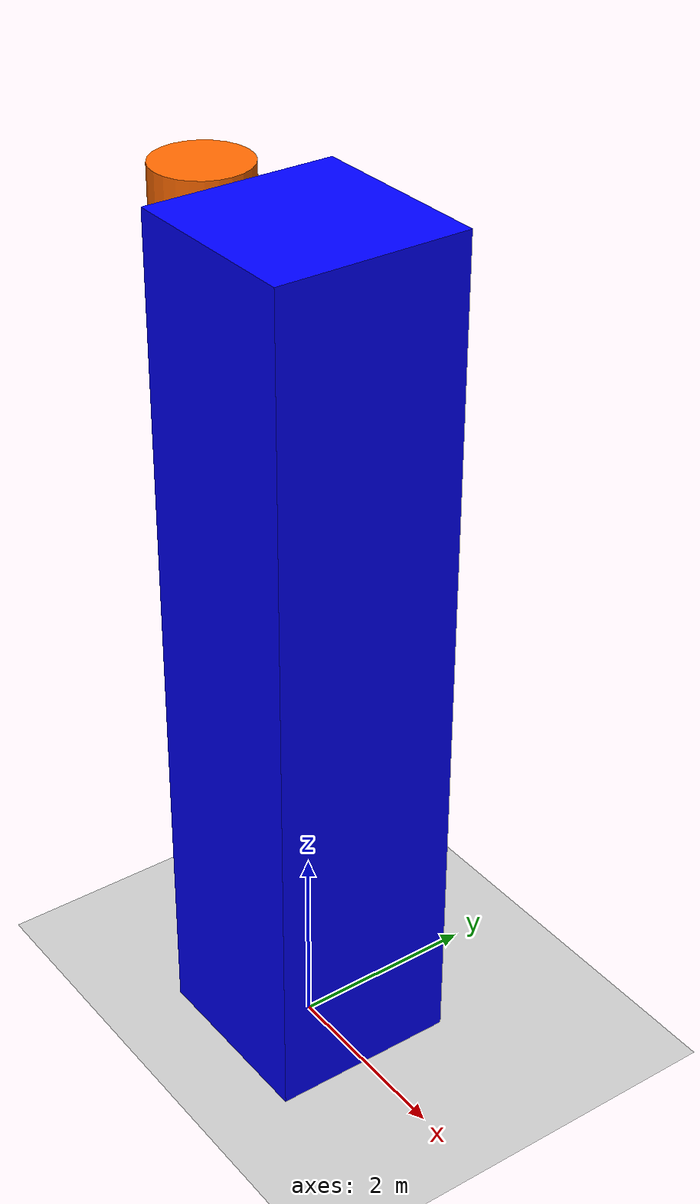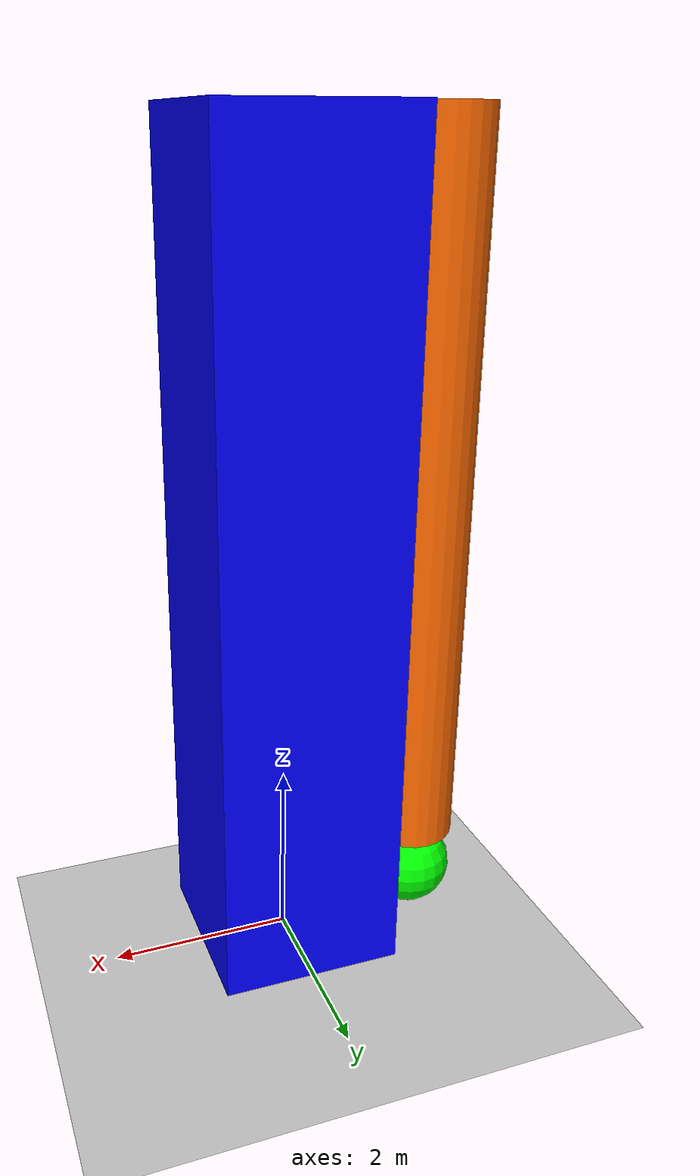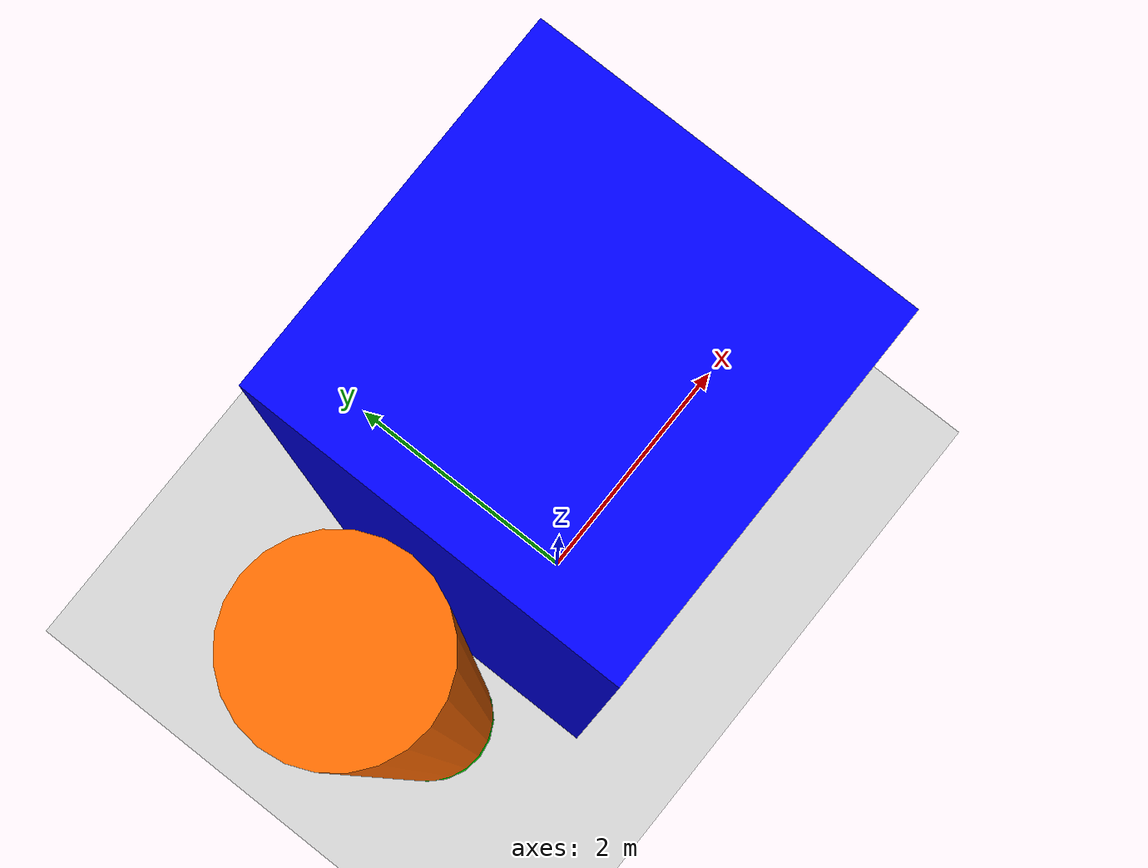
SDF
<?xml version="1.0" ?>
<sdf version="1.8">
    <world name="sim_world">
        <physics name="1ms" type="ignored">
            <max_step_size>0.001</max_step_size>
            <real_time_factor>1.0</real_time_factor>
        </physics>
        <plugin filename="gz-sim-physics-system" name="gz::sim::systems::Physics">
        </plugin>
        <plugin filename="gz-sim-user-commands-system" name="gz::sim::systems::UserCommands">
        </plugin>
        <plugin filename="gz-sim-scene-broadcaster-system" name="gz::sim::systems::SceneBroadcaster">
        </plugin>
        <plugin filename="gz-sim-forcetorque-system" name="gz::sim::systems::ForceTorque">
        </plugin>

        <light type="directional" name="sun">
            <cast_shadows>true</cast_shadows>
            <pose>0 0 10 0 0 0</pose>
            <diffuse>0.8 0.8 0.8 1</diffuse>
            <specular>0.2 0.2 0.2 1</specular>
            <attenuation>
                <range>1000</range>
                <constant>0.9</constant>
                <linear>0.01</linear>
                <quadratic>0.001</quadratic>
            </attenuation>
            <direction>-0.5 0.1 -0.9</direction>
        </light>

        <gui fullscreen="0">
            <!-- Joint Position Ctrl -->
            <plugin filename="JointPositionController" name="Joint Position Controller">
                <gz-gui>
                    <property type="bool" key="showTitleBar">true</property>
                    <property type="bool" key="resizable">true</property>
                    <property type="double" key="width">450</property>
                    <property type="double" key="height">150</property>
                    <property type="string" key="state">floating</property>
                    <anchors target="3D View">
                        <line own="left" target="left"/>
                        <line own="top" target="top"/>
                    </anchors>
                </gz-gui>
            </plugin>

            <!-- 3D scene -->
            <plugin filename="MinimalScene" name="3D View">
                <gz-gui>
                    <title>3D View</title>
                    <property type="bool" key="showTitleBar">false</property>
                    <property type="string" key="state">docked</property>
                </gz-gui>

                <engine>ogre2</engine>
                <scene>scene</scene>
                <ambient_light>0.4 0.4 0.4</ambient_light>
                <background_color>0.8 0.8 0.8</background_color>
                <camera_pose>-11 3 9 0 0.4 0</camera_pose>
                <camera_clip>
                    <near>0.25</near>
                    <far>25000</far>
                </camera_clip>
            </plugin>

            <plugin filename="GzSceneManager" name="Scene Manager">
                <gz-gui>
                    <property key="resizable" type="bool">false</property>
                    <property key="width" type="double">5</property>
                    <property key="height" type="double">5</property>
                    <property key="state" type="string">floating</property>
                    <property key="showTitleBar" type="bool">false</property>
                </gz-gui>
            </plugin>

            <!-- World control -->
            <plugin filename="WorldControl" name="World control">
                <gz-gui>
                    <title>World control</title>
                    <property type="bool" key="showTitleBar">false</property>
                    <property type="bool" key="resizable">false</property>
                    <property type="double" key="height">72</property>
                    <property type="double" key="width">170</property>
                    <property type="double" key="z">1</property>

                    <property type="string" key="state">floating</property>
                    <anchors target="3D View">
                        <line own="left" target="left"/>
                        <line own="bottom" target="bottom"/>
                    </anchors>
                </gz-gui>

                <play_pause>true</play_pause>
                <step>true</step>
                <start_paused>true</start_paused>
                <service>/world/world_demo/control</service>
                <stats_topic>/world/world_demo/stats</stats_topic>
            </plugin>

            <!-- World statistics -->
            <plugin filename="WorldStats" name="World stats">
                <gz-gui>
                    <title>World stats</title>
                    <property type="bool" key="showTitleBar">false</property>
                    <property type="bool" key="resizable">false</property>
                    <property type="double" key="height">110</property>
                    <property type="double" key="width">290</property>
                    <property type="double" key="z">1</property>

                    <property type="string" key="state">floating</property>
                    <anchors target="3D View">
                        <line own="right" target="right"/>
                        <line own="bottom" target="bottom"/>
                    </anchors>
                </gz-gui>

                <sim_time>true</sim_time>
                <real_time>true</real_time>
                <real_time_factor>true</real_time_factor>
                <iterations>true</iterations>
                <topic>/world/world_demo/stats</topic>

            </plugin>

            <!-- Component inspector -->
            <plugin filename="ComponentInspector" name="Component Inspector">
                <gz-gui>
                    <property type="bool" key="showTitleBar">false</property>
                    <property type="bool" key="resizable">true</property>
                    <property type="double" key="width">350</property>
                </gz-gui>
            </plugin>

            <!-- Entity tree -->
            <plugin filename="EntityTree" name="Entity tree">
                <gz-gui>
                    <property type="bool" key="showTitleBar">false</property>
                    <property type="bool" key="resizable">true</property>
                </gz-gui>
            </plugin>

            <!-- View angle -->
            <plugin filename="ViewAngle" name="View Angle">
                <gz-gui>
                    <property type="bool" key="showTitleBar">false</property>
                    <property type="bool" key="resizable">true</property>

                </gz-gui>
            </plugin>

            <!-- View Control -->
            <plugin filename="InteractiveViewControl" name="Interactive View Control">
            </plugin>

        </gui>

        <model name="ground_plane">
            <static>true</static>
            <link name="link">
                <collision name="collision">
                    <geometry>
                        <plane>
                            <normal>0 0 1</normal>
                        </plane>
                    </geometry>
                </collision>
                <visual name="visual">
                    <geometry>
                        <plane>
                            <normal>0 0 1</normal>
                            <size>100 100</size>
                        </plane>
                    </geometry>
                    <material>
                        <ambient>0.8 0.8 0.8 1</ambient>
                        <diffuse>0.8 0.8 0.8 1</diffuse>
                        <specular>0.8 0.8 0.8 1</specular>
                    </material>
                </visual>
            </link>
        </model>

        <include>
            <uri>file://robot_model.sdf</uri>
            <pose>0 0 4.5 0 0 0</pose>
        </include>

    </world>
</sdf>

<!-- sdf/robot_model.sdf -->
<sdf version='1.11'>
    <model name='robot_model'>
        <link name='base_link'>
            <inertial>
                <pose>0 0 0 0 0 0</pose>
                <mass>100</mass>
                <inertia>
                    <ixx>70.833330000000004</ixx>
                    <ixy>0</ixy>
                    <ixz>0</ixz>
                    <iyy>70.833330000000004</iyy>
                    <iyz>0</iyz>
                    <izz>6.6666699999999999</izz>
                </inertia>
            </inertial>
            <collision name='base_link_fixed_joint_lump__base_collision_collision'>
                <pose>0 0 0 0 0 0</pose>
                <geometry>
                    <box>
                        <size>2 2 9</size>
                    </box>
                </geometry>
            </collision>
            <visual name='base_link_fixed_joint_lump__base_visual'>
                <pose>0 0 0 0 0 0</pose>
                <geometry>
                    <box>
                        <size>2 2 9</size>
                    </box>
                </geometry>
                <material>
                    <diffuse>0 0 1 1</diffuse>
                    <ambient>0 0 1 1</ambient>
                </material>
            </visual>
        </link>
        <joint name='arm_base_joint' type='revolute'>
            <pose relative_to='base_link'>-1.6 0 3.5 0 0 0</pose>
            <parent>base_link</parent>
            <child>arm_link</child>
            <axis>
                <xyz>1 0 0</xyz>
                <limit>
                    <lower>0</lower>
                    <upper>1.57</upper>
                    <effort>200</effort>
                    <velocity>100</velocity>
                </limit>
                <dynamics>
                </dynamics>
            </axis>
            <sensor name="force_torque_sensor" type="force_torque">
                <update_rate>2</update_rate>                <!-- Hz -->
                <topic>/arm_base_joint_ft</topic>
                <force_torque>
                    <frame>child</frame>
                </force_torque>
            </sensor>
        </joint>
        <link name='arm_link'>
            <pose relative_to='arm_base_joint'>0 0 0 0 0 0</pose>
            <inertial>
                <pose>0 0 -7.0909090909090908 0 0 0</pose>
                <mass>1.1</mass>
                <inertia>
                    <ixx>2.480489090909082</ixx>
                    <ixy>0</ixy>
                    <ixz>0</ixz>
                    <iyy>1.953409090909084</iyy>
                    <iyz>0</iyz>
                    <izz>0.63957999999999993</izz>
                </inertia>
            </inertial>
            <collision name='arm_link_fixed_joint_lump__arm_collision_collision'>
                <pose>0 0 -3 0 0 0</pose>
                <geometry>
                    <cylinder>
                        <length>8</length>
                        <radius>0.5</radius>
                    </cylinder>
                </geometry>
            </collision>
            <visual name='arm_link_fixed_joint_lump__arm_visual'>
                <pose>0 0 -3 0 0 0</pose>
                <geometry>
                    <cylinder>
                        <length>8</length>
                        <radius>0.5</radius>
                    </cylinder>
                </geometry>
                <material>
                    <diffuse>1 0.411762476 0 1</diffuse>
                    <ambient>1 0.411762476 0 1</ambient>
                </material>
            </visual>
            <visual name='arm_link_fixed_joint_lump__load_visual_1'>
                <pose>0 0 -7.5 0 0 -3.1415899999999999</pose>
                <geometry>
                    <sphere>
                        <radius>0.5</radius>
                    </sphere>
                </geometry>
                <material>
                    <diffuse>0 1 0 1</diffuse>
                    <ambient>0 1 0 1</ambient>
                </material>
            </visual>
        </link>
        <frame name='arm_load_joint' attached_to='arm_link'>
            <pose>0 0 -7.5 0 0 -3.1415899999999999</pose>
        </frame>
        <frame name='load_link' attached_to='arm_load_joint'>
            <pose>0 0 0 0 0 0</pose>
        </frame>
        <plugin filename="gz-sim-joint-position-controller-system" name="gz::sim::systems::JointPositionController">
            <joint_name>arm_base_joint</joint_name>
            <p_gain>300</p_gain>
            <i_gain>100</i_gain>
            <d_gain>200</d_gain>
            <i_max>100</i_max>
            <i_min>-100</i_min>
            <cmd_max>200</cmd_max>
            <cmd_min>-200</cmd_min>
            <initial_position>0</initial_position>
        </plugin>
        <plugin filename="gz-sim-joint-state-publisher-system" name="gz::sim::systems::JointStatePublisher">
            <joint_name>arm_base_joint</joint_name>
            <topic>/arm_base_joint_state</topic>
        </plugin>
    </model>
</sdf>
